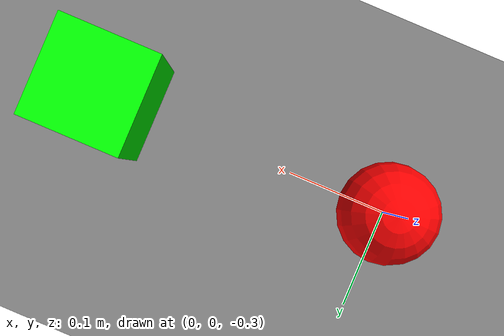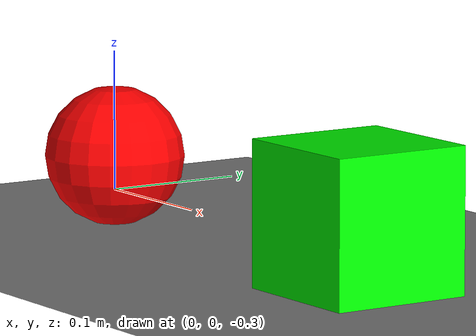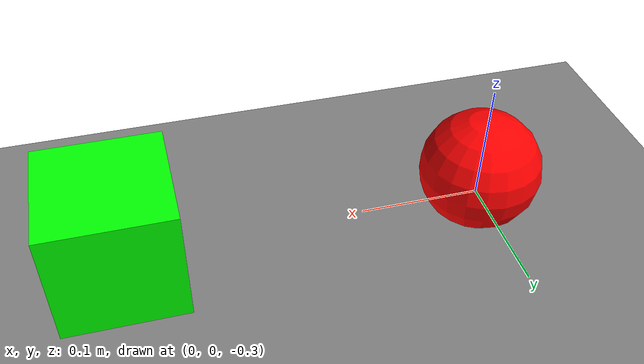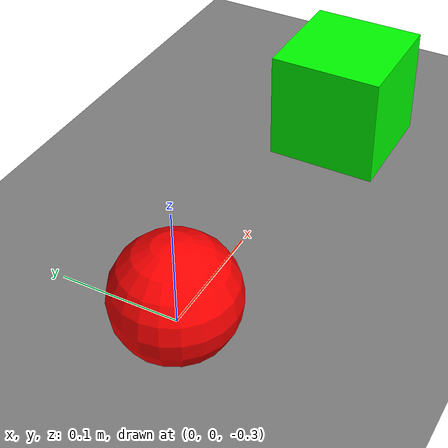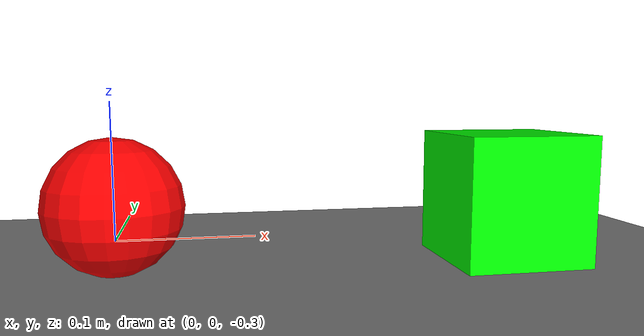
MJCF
<mujoco model="arm3d">
    <compiler angle="radian" coordinate="local" inertiafromgeom="true" meshdir="mesh" texturedir="textures" />
    <option gravity="0 0 0" integrator="Euler" iterations="20" timestep="0.01" />

    <default>
        <joint armature="0.04" damping="1" limited="true" />
        <geom conaffinity="0" condim="1" contype="0" density="10" friction=".8 .1 .1" margin="0.002" />
    </default>

    <asset>
        <texture name="texplane" type="2d" builtin="checker" rgb1=".8 .8 .8" rgb2=".8 .8 .8" width="100" height="100" />
        <texture name="texgeom" type="cube" builtin="flat" mark="cross" width="127" height="1278" rgb1="0.8 0.6 0.4" rgb2="0.8 0.6 0.4" markrgb="1 1 1" random="0.01" />

        <material name='MatPlane' texture="texplane" shininess="1" texrepeat="30 30" specular="1"  reflectance="0.5" />
    </asset>
    <worldbody>
        <light diffuse=".5 .5 .5" dir="0 0 -1" pos="0 0 3" />

        <geom conaffinity="1" contype="1" condim="1" name="table" pos="0 0 -0.325" size="1 1 0.1" type="plane" />

        <body name="ball" pos="0 0. -0.325">
            <geom conaffinity="0" contype="0" pos="0 0 0.05" density="0.0001" size="0.05 0.05 0.05" rgba="1 0. 0 1" type="sphere" />
            <joint axis="1 0 0" damping="0" name="obj1_slidex" pos="0 0 0.05" range="-3 3" type="slide" />
            <joint axis="0 1 0" damping="0" name="obj1_slidey" pos="0 0 0.05" range="-3 3" type="slide" />

        </body>

         <body name="target" pos="0.3 0. -0.325">
            <geom conaffinity="0" contype="0" pos="0 0 0.05" density="0.0001" size="0.05 0.05 0.05" rgba="0 1. 0 1" type="box" />

        </body>

    </worldbody>

    <actuator>
        <motor ctrllimited="true" ctrlrange="-2.0 2.0" joint="obj1_slidex" />
        <motor ctrllimited="true" ctrlrange="-2.0 2.0" joint="obj1_slidey" />

    </actuator>

</mujoco>
